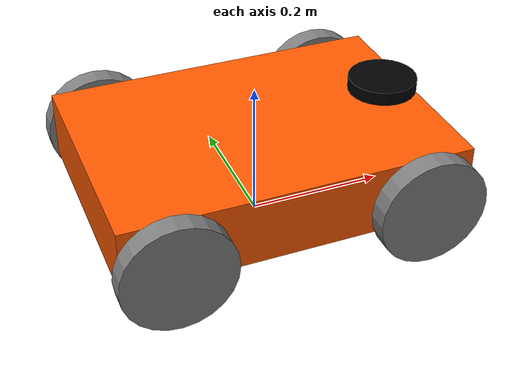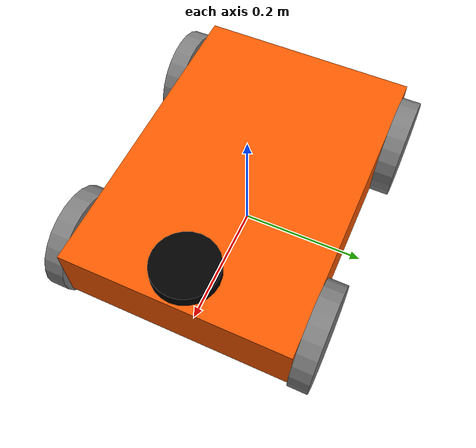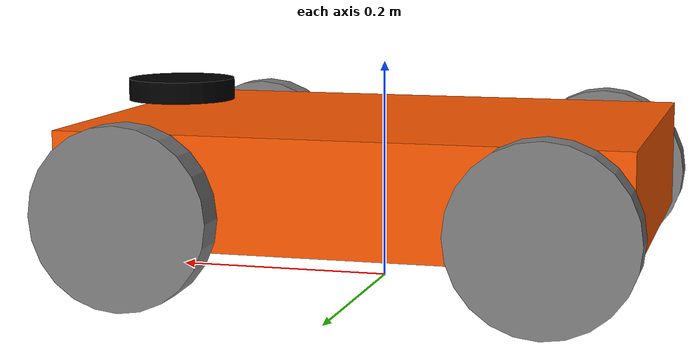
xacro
<?xml version="1.0" ?>

<robot name="my_robot">

  <material name="orange">
    <color rgba="1 0.35 0 1"/>
  </material>

  <material name="gray">
    <color rgba="0.5 0.5 0.5 1"/>
  </material>

  <material name="black">
    <color rgba="0 0 0 1"/>
  </material>

  <!-- Robot Properties -->

  <!-- Base Footprint -->
  <link name="base_footprint"/>

  <!-- Base Link -->
  <link name="base_link">
    <visual>
      <geometry>
        <box size="0.5 0.35 0.1"/>
      </geometry>
      <material name="orange"/>
      <origin rpy="0 0 0" xyz="0 0 0.05"/>
    </visual>
    <collision>
      <geometry>
        <box size="0.5 0.35 0.1"/>
      </geometry>
      <material name="orange"/>
      <origin rpy="0 0 0" xyz="0 0 0.05"/>
    </collision>
    <inertial>
      <origin rpy="0 0 0" xyz="0 0 0.05"/>
      <mass value="5.0"/>
      <inertia ixx="0.10833333333333334" ixy="0" ixz="0" iyy="0.15520833333333334" iyz="0" izz="0.055208333333333325"/>
    </inertial>
  </link>

  <link name="right_r_wheel_link">
    <visual>
      <geometry>
        <cylinder length="0.03" radius="0.08"/>
      </geometry>
      <origin rpy="1.5707963267948966 0 0" xyz="0 0 0"/>   \\ rotat wheel 180 degree about X axis
      <material name="gray"/>
    </visual>
    <collision>
      <geometry>
        <cylinder length="0.03" radius="0.08"/>
      </geometry>
      <origin rpy="1.5707963267948966 0 0" xyz="0 0 0"/> rotat wheel 180 degree about X axis
    </collision>
    <inertial>
      <origin rpy="1.5707963267948966 0 0" xyz="0 0 0"/>
      <mass value="0.5"/>
      <inertia ixx="0.0008374999999999999" ixy="0" ixz="0" iyy="0.0008374999999999999" iyz="0" izz="0.0016"/>
    </inertial>
  </link>

  <link name="right_f_wheel_link">
    <visual>
      <geometry>
        <cylinder length="0.03" radius="0.08"/>
      </geometry>
      <origin rpy="1.5707963267948966 0 0" xyz="0 0 0"/>  rotat wheel 180 degree about X axis
      <material name="gray"/>
    </visual>
    <collision>
      <geometry>
        <cylinder length="0.03" radius="0.08"/>
      </geometry>
      <origin rpy="1.5707963267948966 0 0" xyz="0 0 0"/> rotat wheel 180 degree about X axis
    </collision>
    <inertial>
      <origin rpy="1.5707963267948966 0 0" xyz="0 0 0"/>
      <mass value="0.5"/>
      <inertia ixx="0.0008374999999999999" ixy="0" ixz="0" iyy="0.0008374999999999999" iyz="0" izz="0.0016"/>
    </inertial>
  </link>

  <link name="left_r_wheel_link">
    <visual>
      <geometry>
        <cylinder length="0.03" radius="0.08"/>
      </geometry>
      <origin rpy="1.5707963267948966 0 0" xyz="0 0 0"/>  rotat wheel 180 degree about X axis
      <material name="gray"/>
    </visual>
    <collision>
      <geometry>
        <cylinder length="0.03" radius="0.08"/>
      </geometry>
      <origin rpy="1.5707963267948966 0 0" xyz="0 0 0"/>  rotat wheel 180 degree about X axis
    </collision>
    <inertial>
      <origin rpy="1.5707963267948966 0 0" xyz="0 0 0"/>
      <mass value="0.5"/>
      <inertia ixx="0.0008374999999999999" ixy="0" ixz="0" iyy="0.0008374999999999999" iyz="0" izz="0.0016"/>
    </inertial>
  </link>

  <link name="left_f_wheel_link">
    <visual>
      <geometry>
        <cylinder length="0.03" radius="0.08"/>
      </geometry>
      <origin rpy="1.5707963267948966 0 0" xyz="0 0 0"/> rotat wheel 180 degree about X axis
      <material name="gray"/>
    </visual>
    <collision>
      <geometry>
        <cylinder length="0.03" radius="0.08"/>
      </geometry>
      <origin rpy="1.5707963267948966 0 0" xyz="0 0 0"/>  rotat wheel 180 degree about X axis
    </collision>
    <inertial>
      <origin rpy="1.5707963267948966 0 0" xyz="0 0 0"/>
      <mass value="0.5"/>
      <inertia ixx="0.0008374999999999999" ixy="0" ixz="0" iyy="0.0008374999999999999" iyz="0" izz="0.0016"/>
    </inertial>
  </link>

  <!-- Fixed Joint for Base -->
  <joint name="base_joint" type="fixed">
    <parent link="base_footprint"/>
    <child link="base_link"/>
    <origin rpy="0 0 0" xyz="0 0 0.05"/>
  </joint>

  <!-- Continuous Joints for Wheels -->
  <!-- Rear Right Wheel -->
  <joint name="base_right_wheel_r_joint" type="continuous">
    <parent link="base_link"/>
    <child link="right_r_wheel_link"/>
    <origin rpy="0 0 0" xyz="-0.18 -0.19 0.03"/>
    <axis xyz="0 1 0"/>
  </joint>

  <!-- Front Right Wheel -->
  <joint name="base_right_wheel_f_joint" type="continuous">
    <parent link="base_link"/>
    <child link="right_f_wheel_link"/>
    <origin rpy="0 0 0" xyz="0.18 -0.19 0.03"/>
    <axis xyz="0 1 0"/>
  </joint>

  <!-- Rear Left Wheel -->
  <joint name="base_left_wheel_r_joint" type="continuous">
    <parent link="base_link"/>
    <child link="left_r_wheel_link"/>
    <origin rpy="0 0 0" xyz="-0.18 0.19 0.03"/>
    <axis xyz="0 1 0"/>
  </joint>

  <!-- Front Left Wheel -->
  <joint name="base_left_wheel_f_joint" type="continuous">
    <parent link="base_link"/>
    <child link="left_f_wheel_link"/>
    <origin rpy="0 0 0" xyz="0.18 0.19 0.03"/>
    <axis xyz="0 1 0"/>
  </joint>

  <gazebo reference="base_link">
    <material>Gazebo/Orange</material>
  </gazebo>

  <gazebo reference="right_r_wheel_link">
    <material>Gazebo/Gray</material>
  </gazebo>

  <gazebo reference="right_f_wheel_link">
    <material>Gazebo/Gray</material>
  </gazebo>

  <gazebo reference="left_f_wheel_link">
    <material>Gazebo/Gray</material>
  </gazebo>

  <gazebo reference="left_r_wheel_link">
    <material>Gazebo/Gray</material>
  </gazebo>

  <gazebo>
    <plugin filename="libgazebo_ros_diff_drive.so" name="front_wheel">
      <!-- Wheel Information -->
      <left_joint>base_left_wheel_f_joint</left_joint>
      <right_joint>base_right_wheel_f_joint</right_joint>
      <wheel_separation>0.64</wheel_separation>
      <wheel_diameter>0.16</wheel_diameter>
      <!-- Limit -->
      <max_wheel_torque>200</max_wheel_torque>
      <max_wheel_acceleration>10.0</max_wheel_acceleration>
      <!-- Output -->
      <odometry_frame>odom</odometry_frame>
      <robot_base_frame>base_footprint</robot_base_frame>
      <publish_odom>true</publish_odom>
      <publish_odom_tf>true</publish_odom_tf>
      <publish_wheel_tf>true</publish_wheel_tf>
    </plugin>
  </gazebo>

  <gazebo>
    <plugin filename="libgazebo_ros_diff_drive.so" name="rear_wheel">
      <!-- Wheel Information -->
      <left_joint>base_left_wheel_r_joint</left_joint>
      <right_joint>base_right_wheel_r_joint</right_joint>
      <wheel_separation>0.64</wheel_separation>
      <wheel_diameter>0.16</wheel_diameter>
      <!-- Limit -->
      <max_wheel_torque>200</max_wheel_torque>
      <max_wheel_acceleration>10.0</max_wheel_acceleration>
      <!-- Output -->
      <odometry_frame>odom</odometry_frame>
      <robot_base_frame>base_footprint</robot_base_frame>
      <publish_odom>true</publish_odom>
      <publish_odom_tf>true</publish_odom_tf>
      <publish_wheel_tf>true</publish_wheel_tf>
    </plugin>
  </gazebo>

  <!-- LiDAR Link -->
  <link name="laser_frame">
    <visual>
      <geometry>
        <cylinder length="0.02" radius="0.05"/>
      </geometry>
      <material name="black"/>
    </visual>
    <collision>
      <geometry>
        <cylinder length="0.02" radius="0.05"/>
      </geometry>
    </collision>
    <inertial>
      <origin rpy="0 0 0" xyz="0 0 0"/>
      <mass value="0.2"/>
      <inertia ixx="0.00013166666666666668" ixy="0" ixz="0" iyy="0.00013166666666666668" iyz="0" izz="0.00025000000000000006"/>
    </inertial>
  </link>

  <!-- LiDAR Joint -->
  <joint name="base_lidar_joint" type="fixed">
    <parent link="base_link"/>
    <child link="laser_frame"/>
    <origin rpy="0 0 0" xyz="0.2 0 0.12"/>
  </joint>

  <!-- Gazebo Plugin for LiDAR -->
  <gazebo reference="laser_frame">
    <material>Gazebo/Black</material>
    <sensor name="lidar_sensor" type="ray">
      <pose>0 0 0 0 0 0</pose>
      <visualize>true</visualize>
      <update_rate>10</update_rate>
      <ray>
        <scan>
          <horizontal>
            <samples>360</samples>
            <min_angle>-3.14</min_angle>
            <max_angle>3.14</max_angle>
          </horizontal>
        </scan>
        <range>
          <min>0.1</min>
          <max>10</max>
        </range>
      </ray>
      <plugin filename="libgazebo_ros_ray_sensor.so" name="laser_controller">
        <ros>
          <argument>~/out:=scan</argument>
        </ros>
        <output_type>sensor_msgs/LaserScan</output_type>
        <frame_name>laser_frame</frame_name>
      </plugin>
    </sensor>
  </gazebo>

</robot>
